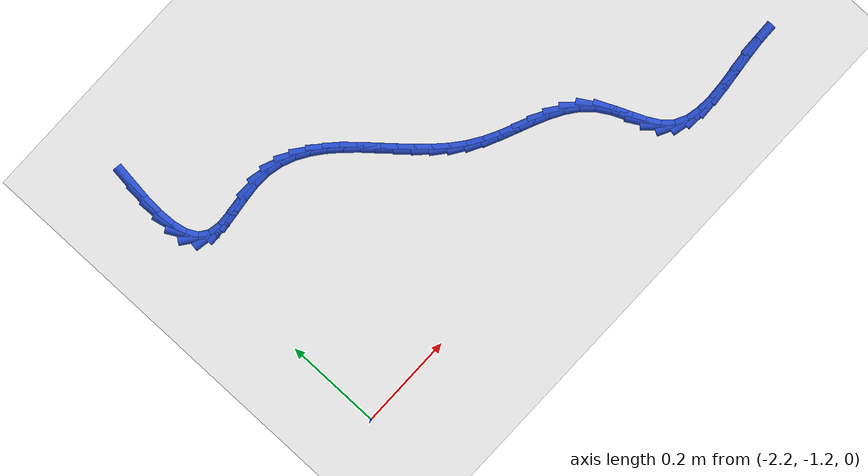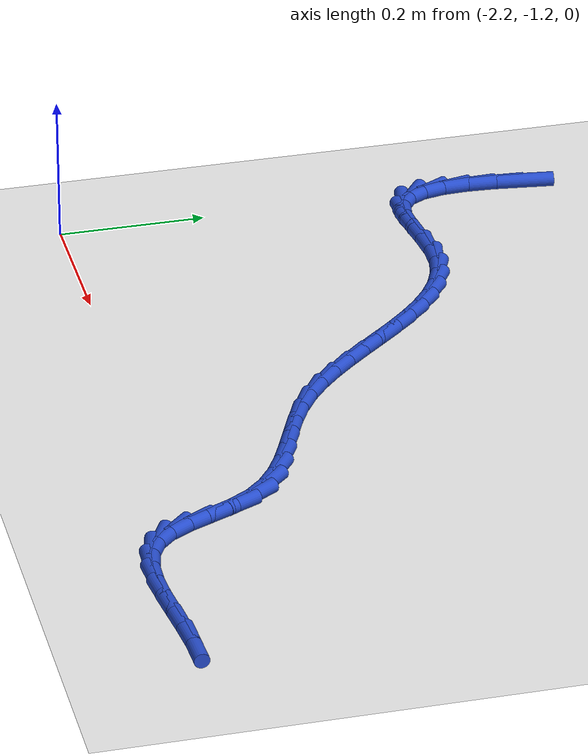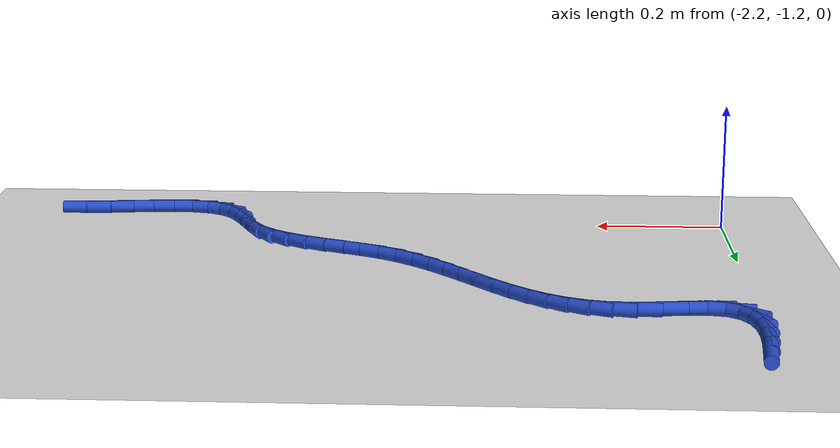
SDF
<sdf version="1.6">
 <world name="default">
  <model name="ground_plane">
   <static>1</static>
   <link name="link">
    <collision name="collision">
     <geometry><plane><normal>0 0 1</normal><size>100 100</size></plane></geometry>
     <surface><friction><ode><mu>100</mu><mu2>50</mu2></ode></friction></surface>
    </collision>
    <visual name="visual">
     <cast_shadows>0</cast_shadows>
     <geometry><plane><normal>0 0 1</normal><size>100 100</size></plane></geometry>
     <material>
      <script><uri>file://media/materials/scripts/gazebo.material</uri><name>Gazebo/WhiteGlow</name></script>
     </material>
    </visual>
   </link>
  </model>
  <model name="line">
   <link name="link_156">
    <pose>-2.1810125806159886 -0.5474105945933962 0.01 0 1.57 1.449633929238106</pose>
    <collision name="collision">
     <geometry><cylinder><radius>0.01</radius><length>0.08</length></cylinder></geometry>
    </collision>
    <visual name="visual">
     <material>
      <script><name>Gazebo/Blue</name><uri>file://media/materials/scripts/gazebo.material</uri></script>
     </material>
     <geometry><cylinder><radius>0.01</radius><length>0.08</length></cylinder></geometry>
    </visual>
   </link>
   <link name="link_157">
    <pose>-2.1860109895708746 -0.5884623206918165 0.01 0 1.57 1.5116149671514432</pose>
    <collision name="collision">
     <geometry><cylinder><radius>0.01</radius><length>0.08</length></cylinder></geometry>
    </collision>
    <visual name="visual">
     <material>
      <script><name>Gazebo/Blue</name><uri>file://media/materials/scripts/gazebo.material</uri></script>
     </material>
     <geometry><cylinder><radius>0.01</radius><length>0.08</length></cylinder></geometry>
    </visual>
   </link>
   <link name="link_158">
    <pose>-2.188317755482625 -0.627394717626561 0.01 0 1.57 -1.5290875969865494</pose>
    <collision name="collision">
     <geometry><cylinder><radius>0.01</radius><length>0.08</length></cylinder></geometry>
    </collision>
    <visual name="visual">
     <material>
      <script><name>Gazebo/Blue</name><uri>file://media/materials/scripts/gazebo.material</uri></script>
     </material>
     <geometry><cylinder><radius>0.01</radius><length>0.08</length></cylinder></geometry>
    </visual>
   </link>
   <link name="link_159">
    <pose>-2.1868501669607796 -0.6625609146153778 0.01 0 1.57 -1.3613429206031256</pose>
    <collision name="collision">
     <geometry><cylinder><radius>0.01</radius><length>0.08</length></cylinder></geometry>
    </collision>
    <visual name="visual">
     <material>
      <script><name>Gazebo/Blue</name><uri>file://media/materials/scripts/gazebo.material</uri></script>
     </material>
     <geometry><cylinder><radius>0.01</radius><length>0.08</length></cylinder></geometry>
    </visual>
   </link>
   <link name="link_160">
    <pose>-2.180525512614878 -0.6923140408760141 0.01 0 1.57 -1.0753181389654498</pose>
    <collision name="collision">
     <geometry><cylinder><radius>0.01</radius><length>0.08</length></cylinder></geometry>
    </collision>
    <visual name="visual">
     <material>
      <script><name>Gazebo/Blue</name><uri>file://media/materials/scripts/gazebo.material</uri></script>
     </material>
     <geometry><cylinder><radius>0.01</radius><length>0.08</length></cylinder></geometry>
    </visual>
   </link>
   <link name="link_161">
    <pose>-2.1682610810544585 -0.7150072256262177 0.01 0 1.57 -0.6274394879524161</pose>
    <collision name="collision">
     <geometry><cylinder><radius>0.01</radius><length>0.08</length></cylinder></geometry>
    </collision>
    <visual name="visual">
     <material>
      <script><name>Gazebo/Blue</name><uri>file://media/materials/scripts/gazebo.material</uri></script>
     </material>
     <geometry><cylinder><radius>0.01</radius><length>0.08</length></cylinder></geometry>
    </visual>
   </link>
   <link name="link_162">
    <pose>-2.14897438974961 -0.7289939404679526 0.01 0 1.57 -0.1753195310384151</pose>
    <collision name="collision">
     <geometry><cylinder><radius>0.01</radius><length>0.08</length></cylinder></geometry>
    </collision>
    <visual name="visual">
     <material>
      <script><name>Gazebo/Blue</name><uri>file://media/materials/scripts/gazebo.material</uri></script>
     </material>
     <geometry><cylinder><radius>0.01</radius><length>0.08</length></cylinder></geometry>
    </visual>
   </link>
   <link name="link_163">
    <pose>-2.1223111228035276 -0.7337170224009796 0.01 0 1.57 0.04964158714865565</pose>
    <collision name="collision">
     <geometry><cylinder><radius>0.01</radius><length>0.08</length></cylinder></geometry>
    </collision>
    <visual name="visual">
     <material>
      <script><name>Gazebo/Blue</name><uri>file://media/materials/scripts/gazebo.material</uri></script>
     </material>
     <geometry><cylinder><radius>0.01</radius><length>0.08</length></cylinder></geometry>
    </visual>
   </link>
   <link name="link_164">
    <pose>-2.0902600451391082 -0.7321246477981826 0.01 0 1.57 0.12107451307601973</pose>
    <collision name="collision">
     <geometry><cylinder><radius>0.01</radius><length>0.08</length></cylinder></geometry>
    </collision>
    <visual name="visual">
     <material>
      <script><name>Gazebo/Blue</name><uri>file://media/materials/scripts/gazebo.material</uri></script>
     </material>
     <geometry><cylinder><radius>0.01</radius><length>0.08</length></cylinder></geometry>
    </visual>
   </link>
   <link name="link_165">
    <pose>-2.055280284372814 -0.7278686737828213 0.01 0 1.57 0.09192018727296172</pose>
    <collision name="collision">
     <geometry><cylinder><radius>0.01</radius><length>0.08</length></cylinder></geometry>
    </collision>
    <visual name="visual">
     <material>
      <script><name>Gazebo/Blue</name><uri>file://media/materials/scripts/gazebo.material</uri></script>
     </material>
     <geometry><cylinder><radius>0.01</radius><length>0.08</length></cylinder></geometry>
    </visual>
   </link>
   <link name="link_166">
    <pose>-2.0198309681211093 -0.724600957478155 0.01 0 1.57 -0.03626865410327913</pose>
    <collision name="collision">
     <geometry><cylinder><radius>0.01</radius><length>0.08</length></cylinder></geometry>
    </collision>
    <visual name="visual">
     <material>
      <script><name>Gazebo/Blue</name><uri>file://media/materials/scripts/gazebo.material</uri></script>
     </material>
     <geometry><cylinder><radius>0.01</radius><length>0.08</length></cylinder></geometry>
    </visual>
   </link>
   <link name="link_167">
    <pose>-1.9862705641596439 -0.7258186821457032 0.01 0 1.57 -0.21858716132444536</pose>
    <collision name="collision">
     <geometry><cylinder><radius>0.01</radius><length>0.08</length></cylinder></geometry>
    </collision>
    <visual name="visual">
     <material>
      <script><name>Gazebo/Blue</name><uri>file://media/materials/scripts/gazebo.material</uri></script>
     </material>
     <geometry><cylinder><radius>0.01</radius><length>0.08</length></cylinder></geometry>
    </visual>
   </link>
   <link name="link_168">
    <pose>-1.9554286812269541 -0.7326697870046772 0.01 0 1.57 -0.3929442579792829</pose>
    <collision name="collision">
     <geometry><cylinder><radius>0.01</radius><length>0.08</length></cylinder></geometry>
    </collision>
    <visual name="visual">
     <material>
      <script><name>Gazebo/Blue</name><uri>file://media/materials/scripts/gazebo.material</uri></script>
     </material>
     <geometry><cylinder><radius>0.01</radius><length>0.08</length></cylinder></geometry>
    </visual>
   </link>
   <link name="link_169">
    <pose>-1.9269462957871122 -0.7444757595076437 0.01 0 1.57 -0.543917336845157</pose>
    <collision name="collision">
     <geometry><cylinder><radius>0.01</radius><length>0.08</length></cylinder></geometry>
    </collision>
    <visual name="visual">
     <material>
      <script><name>Gazebo/Blue</name><uri>file://media/materials/scripts/gazebo.material</uri></script>
     </material>
     <geometry><cylinder><radius>0.01</radius><length>0.08</length></cylinder></geometry>
    </visual>
   </link>
   <link name="link_170">
    <pose>-1.900433124234056 -0.7605100528988232 0.01 0 1.57 -0.6646009025236347</pose>
    <collision name="collision">
     <geometry><cylinder><radius>0.01</radius><length>0.08</length></cylinder></geometry>
    </collision>
    <visual name="visual">
     <material>
      <script><name>Gazebo/Blue</name><uri>file://media/materials/scripts/gazebo.material</uri></script>
     </material>
     <geometry><cylinder><radius>0.01</radius><length>0.08</length></cylinder></geometry>
    </visual>
   </link>
   <link name="link_171">
    <pose>-1.8754988829617236 -0.7800461204224366 0.01 0 1.57 -0.754266310760984</pose>
    <collision name="collision">
     <geometry><cylinder><radius>0.01</radius><length>0.08</length></cylinder></geometry>
    </collision>
    <visual name="visual">
     <material>
      <script><name>Gazebo/Blue</name><uri>file://media/materials/scripts/gazebo.material</uri></script>
     </material>
     <geometry><cylinder><radius>0.01</radius><length>0.08</length></cylinder></geometry>
    </visual>
   </link>
   <link name="link_172">
    <pose>-1.8517532883640528 -0.8023574153227049 0.01 0 1.57 -0.8152524781694065</pose>
    <collision name="collision">
     <geometry><cylinder><radius>0.01</radius><length>0.08</length></cylinder></geometry>
    </collision>
    <visual name="visual">
     <material>
      <script><name>Gazebo/Blue</name><uri>file://media/materials/scripts/gazebo.material</uri></script>
     </material>
     <geometry><cylinder><radius>0.01</radius><length>0.08</length></cylinder></geometry>
    </visual>
   </link>
   <link name="link_173">
    <pose>-1.8288060568349842 -0.8267173908438477 0.01 0 1.57 -0.8504839357370785</pose>
    <collision name="collision">
     <geometry><cylinder><radius>0.01</radius><length>0.08</length></cylinder></geometry>
    </collision>
    <visual name="visual">
     <material>
      <script><name>Gazebo/Blue</name><uri>file://media/materials/scripts/gazebo.material</uri></script>
     </material>
     <geometry><cylinder><radius>0.01</radius><length>0.08</length></cylinder></geometry>
    </visual>
   </link>
   <link name="link_174">
    <pose>-1.8062669047684545 -0.8523995002300858 0.01 0 1.57 -0.8622223485140202</pose>
    <collision name="collision">
     <geometry><cylinder><radius>0.01</radius><length>0.08</length></cylinder></geometry>
    </collision>
    <visual name="visual">
     <material>
      <script><name>Gazebo/Blue</name><uri>file://media/materials/scripts/gazebo.material</uri></script>
     </material>
     <geometry><cylinder><radius>0.01</radius><length>0.08</length></cylinder></geometry>
    </visual>
   </link>
   <link name="link_175">
    <pose>-1.783745548558403 -0.87867719672564 0.01 0 1.57 -0.8516317754033845</pose>
    <collision name="collision">
     <geometry><cylinder><radius>0.01</radius><length>0.08</length></cylinder></geometry>
    </collision>
    <visual name="visual">
     <material>
      <script><name>Gazebo/Blue</name><uri>file://media/materials/scripts/gazebo.material</uri></script>
     </material>
     <geometry><cylinder><radius>0.01</radius><length>0.08</length></cylinder></geometry>
    </visual>
   </link>
   <link name="link_176">
    <pose>-1.760851704598768 -0.9048239335747313 0.01 0 1.57 -0.8187413415938652</pose>
    <collision name="collision">
     <geometry><cylinder><radius>0.01</radius><length>0.08</length></cylinder></geometry>
    </collision>
    <visual name="visual">
     <material>
      <script><name>Gazebo/Blue</name><uri>file://media/materials/scripts/gazebo.material</uri></script>
     </material>
     <geometry><cylinder><radius>0.01</radius><length>0.08</length></cylinder></geometry>
    </visual>
   </link>
   <link name="link_177">
    <pose>-1.7371950892834873 -0.9301131640215798 0.01 0 1.57 -0.7626360135537096</pose>
    <collision name="collision">
     <geometry><cylinder><radius>0.01</radius><length>0.08</length></cylinder></geometry>
    </collision>
    <visual name="visual">
     <material>
      <script><name>Gazebo/Blue</name><uri>file://media/materials/scripts/gazebo.material</uri></script>
     </material>
     <geometry><cylinder><radius>0.01</radius><length>0.08</length></cylinder></geometry>
    </visual>
   </link>
   <link name="link_178">
    <pose>-1.7123854190065 -0.953818341310406 0.01 0 1.57 -0.6819223196942501</pose>
    <collision name="collision">
     <geometry><cylinder><radius>0.01</radius><length>0.08</length></cylinder></geometry>
    </collision>
    <visual name="visual">
     <material>
      <script><name>Gazebo/Blue</name><uri>file://media/materials/scripts/gazebo.material</uri></script>
     </material>
     <geometry><cylinder><radius>0.01</radius><length>0.08</length></cylinder></geometry>
    </visual>
   </link>
   <link name="link_179">
    <pose>-1.6860324101617445 -0.975212918685431 0.01 0 1.57 -0.5765214845190071</pose>
    <collision name="collision">
     <geometry><cylinder><radius>0.01</radius><length>0.08</length></cylinder></geometry>
    </collision>
    <visual name="visual">
     <material>
      <script><name>Gazebo/Blue</name><uri>file://media/materials/scripts/gazebo.material</uri></script>
     </material>
     <geometry><cylinder><radius>0.01</radius><length>0.08</length></cylinder></geometry>
    </visual>
   </link>
   <link name="link_180">
    <pose>-1.6577621618896117 -0.9935944625418347 0.01 0 1.57 -0.4766438241435037</pose>
    <collision name="collision">
     <geometry><cylinder><radius>0.01</radius><length>0.08</length></cylinder></geometry>
    </collision>
    <visual name="visual">
     <material>
      <script><name>Gazebo/Blue</name><uri>file://media/materials/scripts/gazebo.material</uri></script>
     </material>
     <geometry><cylinder><radius>0.01</radius><length>0.08</length></cylinder></geometry>
    </visual>
   </link>
   <link name="link_181">
    <pose>-1.6277612615635617 -1.0090855009143986 0.01 0 1.57 -0.41874094813245494</pose>
    <collision name="collision">
     <geometry><cylinder><radius>0.01</radius><length>0.08</length></cylinder></geometry>
    </collision>
    <visual name="visual">
     <material>
      <script><name>Gazebo/Blue</name><uri>file://media/materials/scripts/gazebo.material</uri></script>
     </material>
     <geometry><cylinder><radius>0.01</radius><length>0.08</length></cylinder></geometry>
    </visual>
   </link>
   <link name="link_182">
    <pose>-1.5969030439648242 -1.0228193596282535 0.01 0 1.57 -0.40411431003343173</pose>
    <collision name="collision">
     <geometry><cylinder><radius>0.01</radius><length>0.08</length></cylinder></geometry>
    </collision>
    <visual name="visual">
     <material>
      <script><name>Gazebo/Blue</name><uri>file://media/materials/scripts/gazebo.material</uri></script>
     </material>
     <geometry><cylinder><radius>0.01</radius><length>0.08</length></cylinder></geometry>
    </visual>
   </link>
   <link name="link_183">
    <pose>-1.5661028056197936 -1.03599112642975 0.01 0 1.57 -0.43347059092934237</pose>
    <collision name="collision">
     <geometry><cylinder><radius>0.01</radius><length>0.08</length></cylinder></geometry>
    </collision>
    <visual name="visual">
     <material>
      <script><name>Gazebo/Blue</name><uri>file://media/materials/scripts/gazebo.material</uri></script>
     </material>
     <geometry><cylinder><radius>0.01</radius><length>0.08</length></cylinder></geometry>
    </visual>
   </link>
   <link name="link_184">
    <pose>-1.5362758430548678 -1.0497958890652392 0.01 0 1.57 -0.5101435040273579</pose>
    <collision name="collision">
     <geometry><cylinder><radius>0.01</radius><length>0.08</length></cylinder></geometry>
    </collision>
    <visual name="visual">
     <material>
      <script><name>Gazebo/Blue</name><uri>file://media/materials/scripts/gazebo.material</uri></script>
     </material>
     <geometry><cylinder><radius>0.01</radius><length>0.08</length></cylinder></geometry>
    </visual>
   </link>
   <link name="link_185">
    <pose>-1.508337452796443 -1.0654287352810718 0.01 0 1.57 -0.638520552315323</pose>
    <collision name="collision">
     <geometry><cylinder><radius>0.01</radius><length>0.08</length></cylinder></geometry>
    </collision>
    <visual name="visual">
     <material>
      <script><name>Gazebo/Blue</name><uri>file://media/materials/scripts/gazebo.material</uri></script>
     </material>
     <geometry><cylinder><radius>0.01</radius><length>0.08</length></cylinder></geometry>
    </visual>
   </link>
   <link name="link_186">
    <pose>-1.4832029313709163 -1.084084752823599 0.01 0 1.57 -0.8183267095530479</pose>
    <collision name="collision">
     <geometry><cylinder><radius>0.01</radius><length>0.08</length></cylinder></geometry>
    </collision>
    <visual name="visual">
     <material>
      <script><name>Gazebo/Blue</name><uri>file://media/materials/scripts/gazebo.material</uri></script>
     </material>
     <geometry><cylinder><radius>0.01</radius><length>0.08</length></cylinder></geometry>
    </visual>
   </link>
   <link name="link_187">
    <pose>-1.461787575304684 -1.1069590294391705 0.01 0 1.57 -1.0225414445526544</pose>
    <collision name="collision">
     <geometry><cylinder><radius>0.01</radius><length>0.08</length></cylinder></geometry>
    </collision>
    <visual name="visual">
     <material>
      <script><name>Gazebo/Blue</name><uri>file://media/materials/scripts/gazebo.material</uri></script>
     </material>
     <geometry><cylinder><radius>0.01</radius><length>0.08</length></cylinder></geometry>
    </visual>
   </link>
   <link name="link_188">
    <pose>-1.4447383707484873 -1.1348762036028572 0.01 0 1.57 -1.1429564662396625</pose>
    <collision name="collision">
     <geometry><cylinder><radius>0.01</radius><length>0.08</length></cylinder></geometry>
    </collision>
    <visual name="visual">
     <material>
      <script><name>Gazebo/Blue</name><uri>file://media/materials/scripts/gazebo.material</uri></script>
     </material>
     <geometry><cylinder><radius>0.01</radius><length>0.08</length></cylinder></geometry>
    </visual>
   </link>
   <link name="link_189">
    <pose>-1.430634269514709 -1.1658056316868208 0.01 0 1.57 -1.1539795055461477</pose>
    <collision name="collision">
     <geometry><cylinder><radius>0.01</radius><length>0.08</length></cylinder></geometry>
    </collision>
    <visual name="visual">
     <material>
      <script><name>Gazebo/Blue</name><uri>file://media/materials/scripts/gazebo.material</uri></script>
     </material>
     <geometry><cylinder><radius>0.01</radius><length>0.08</length></cylinder></geometry>
    </visual>
   </link>
   <link name="link_190">
    <pose>-1.4170929641932577 -1.1963894840473728 0.01 0 1.57 -1.0513674692351505</pose>
    <collision name="collision">
     <geometry><cylinder><radius>0.01</radius><length>0.08</length></cylinder></geometry>
    </collision>
    <visual name="visual">
     <material>
      <script><name>Gazebo/Blue</name><uri>file://media/materials/scripts/gazebo.material</uri></script>
     </material>
     <geometry><cylinder><radius>0.01</radius><length>0.08</length></cylinder></geometry>
    </visual>
   </link>
   <link name="link_191">
    <pose>-1.4017268261357911 -1.2232625841433074 0.01 0 1.57 -0.7979373663322616</pose>
    <collision name="collision">
     <geometry><cylinder><radius>0.01</radius><length>0.08</length></cylinder></geometry>
    </collision>
    <visual name="visual">
     <material>
      <script><name>Gazebo/Blue</name><uri>file://media/materials/scripts/gazebo.material</uri></script>
     </material>
     <geometry><cylinder><radius>0.01</radius><length>0.08</length></cylinder></geometry>
    </visual>
   </link>
   <link name="link_192">
    <pose>-1.3822568822025691 -1.2432270298076769 0.01 0 1.57 -0.4742580302554137</pose>
    <collision name="collision">
     <geometry><cylinder><radius>0.01</radius><length>0.08</length></cylinder></geometry>
    </collision>
    <visual name="visual">
     <material>
      <script><name>Gazebo/Blue</name><uri>file://media/materials/scripts/gazebo.material</uri></script>
     </material>
     <geometry><cylinder><radius>0.01</radius><length>0.08</length></cylinder></geometry>
    </visual>
   </link>
   <link name="link_193">
    <pose>-1.3580668416994754 -1.255644606543866 0.01 0 1.57 -0.21730603955807132</pose>
    <collision name="collision">
     <geometry><cylinder><radius>0.01</radius><length>0.08</length></cylinder></geometry>
    </collision>
    <visual name="visual">
     <material>
      <script><name>Gazebo/Blue</name><uri>file://media/materials/scripts/gazebo.material</uri></script>
     </material>
     <geometry><cylinder><radius>0.01</radius><length>0.08</length></cylinder></geometry>
    </visual>
   </link>
   <link name="link_194">
    <pose>-1.3298394754531486 -1.2618769957261944 0.01 0 1.57 -0.04631166358028402</pose>
    <collision name="collision">
     <geometry><cylinder><radius>0.01</radius><length>0.08</length></cylinder></geometry>
    </collision>
    <visual name="visual">
     <material>
      <script><name>Gazebo/Blue</name><uri>file://media/materials/scripts/gazebo.material</uri></script>
     </material>
     <geometry><cylinder><radius>0.01</radius><length>0.08</length></cylinder></geometry>
    </visual>
   </link>
   <link name="link_195">
    <pose>-1.2982920943073353 -1.2633390528369774 0.01 0 1.57 0.05538735514816356</pose>
    <collision name="collision">
     <geometry><cylinder><radius>0.01</radius><length>0.08</length></cylinder></geometry>
    </collision>
    <visual name="visual">
     <material>
      <script><name>Gazebo/Blue</name><uri>file://media/materials/scripts/gazebo.material</uri></script>
     </material>
     <geometry><cylinder><radius>0.01</radius><length>0.08</length></cylinder></geometry>
    </visual>
   </link>
   <link name="link_196">
    <pose>-1.2641420091057822 -1.2614456333585284 0.01 0 1.57 0.10599750310234883</pose>
    <collision name="collision">
     <geometry><cylinder><radius>0.01</radius><length>0.08</length></cylinder></geometry>
    </collision>
    <visual name="visual">
     <material>
      <script><name>Gazebo/Blue</name><uri>file://media/materials/scripts/gazebo.material</uri></script>
     </material>
     <geometry><cylinder><radius>0.01</radius><length>0.08</length></cylinder></geometry>
    </visual>
   </link>
   <link name="link_197">
    <pose>-1.2281065306922336 -1.2576115927731608 0.01 0 1.57 0.11665580481794703</pose>
    <collision name="collision">
     <geometry><cylinder><radius>0.01</radius><length>0.08</length></cylinder></geometry>
    </collision>
    <visual name="visual">
     <material>
      <script><name>Gazebo/Blue</name><uri>file://media/materials/scripts/gazebo.material</uri></script>
     </material>
     <geometry><cylinder><radius>0.01</radius><length>0.08</length></cylinder></geometry>
    </visual>
   </link>
   <link name="link_198">
    <pose>-1.190902969910438 -1.253251786563189 0.01 0 1.57 0.09191338717783018</pose>
    <collision name="collision">
     <geometry><cylinder><radius>0.01</radius><length>0.08</length></cylinder></geometry>
    </collision>
    <visual name="visual">
     <material>
      <script><name>Gazebo/Blue</name><uri>file://media/materials/scripts/gazebo.material</uri></script>
     </material>
     <geometry><cylinder><radius>0.01</radius><length>0.08</length></cylinder></geometry>
    </visual>
   </link>
   <link name="link_199">
    <pose>-1.1532486376041406 -1.2497810702109262 0.01 0 1.57 0.0313311809106669</pose>
    <collision name="collision">
     <geometry><cylinder><radius>0.01</radius><length>0.08</length></cylinder></geometry>
    </collision>
    <visual name="visual">
     <material>
      <script><name>Gazebo/Blue</name><uri>file://media/materials/scripts/gazebo.material</uri></script>
     </material>
     <geometry><cylinder><radius>0.01</radius><length>0.08</length></cylinder></geometry>
    </visual>
   </link>
  </model>
 </world>
</sdf>
